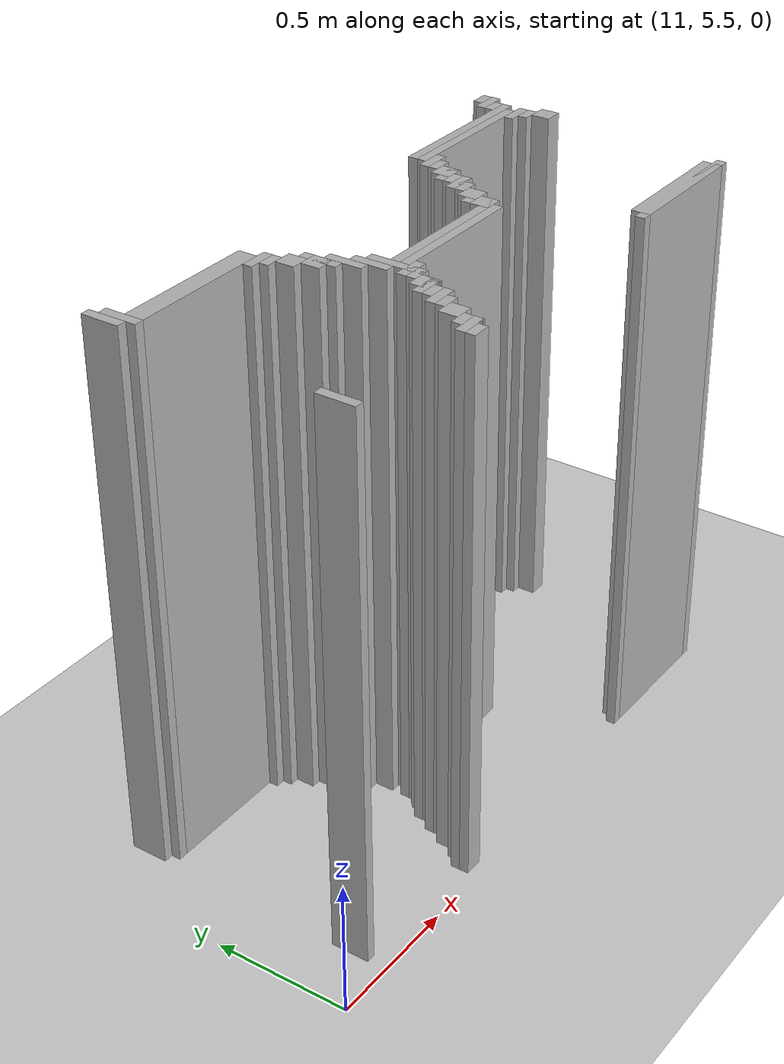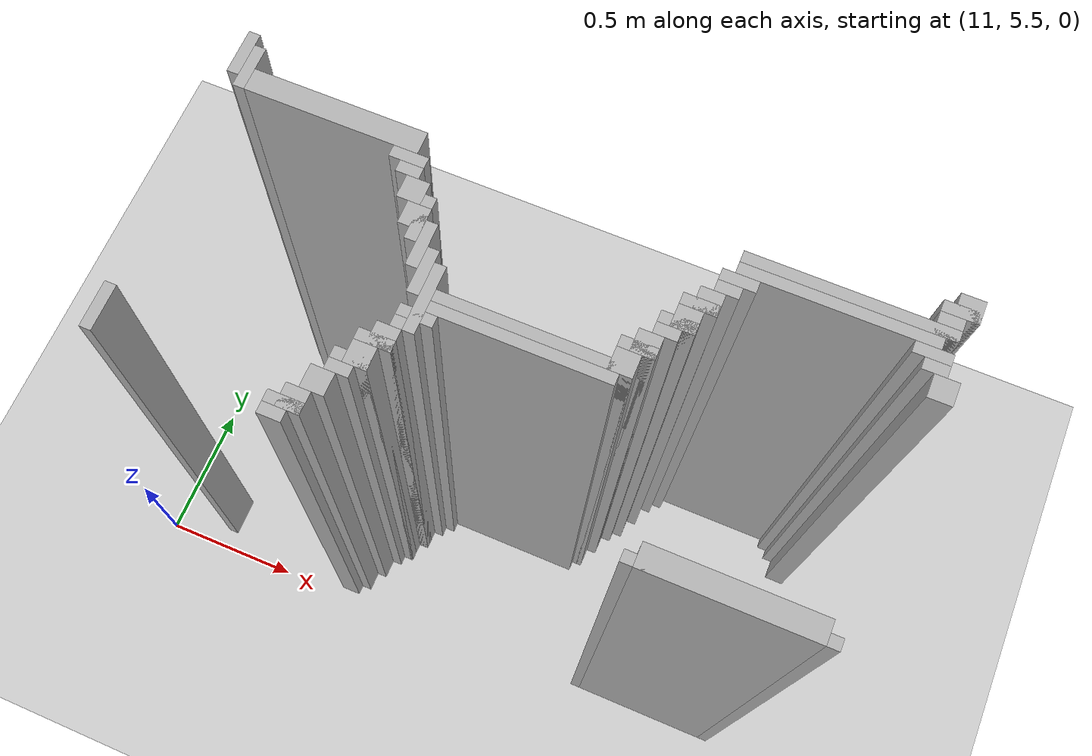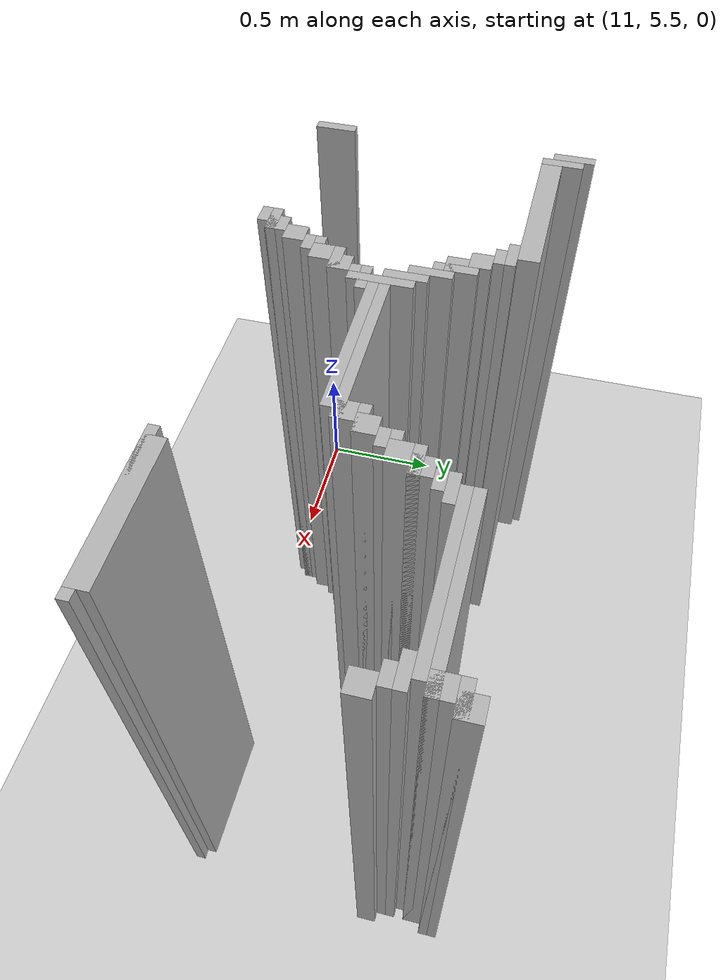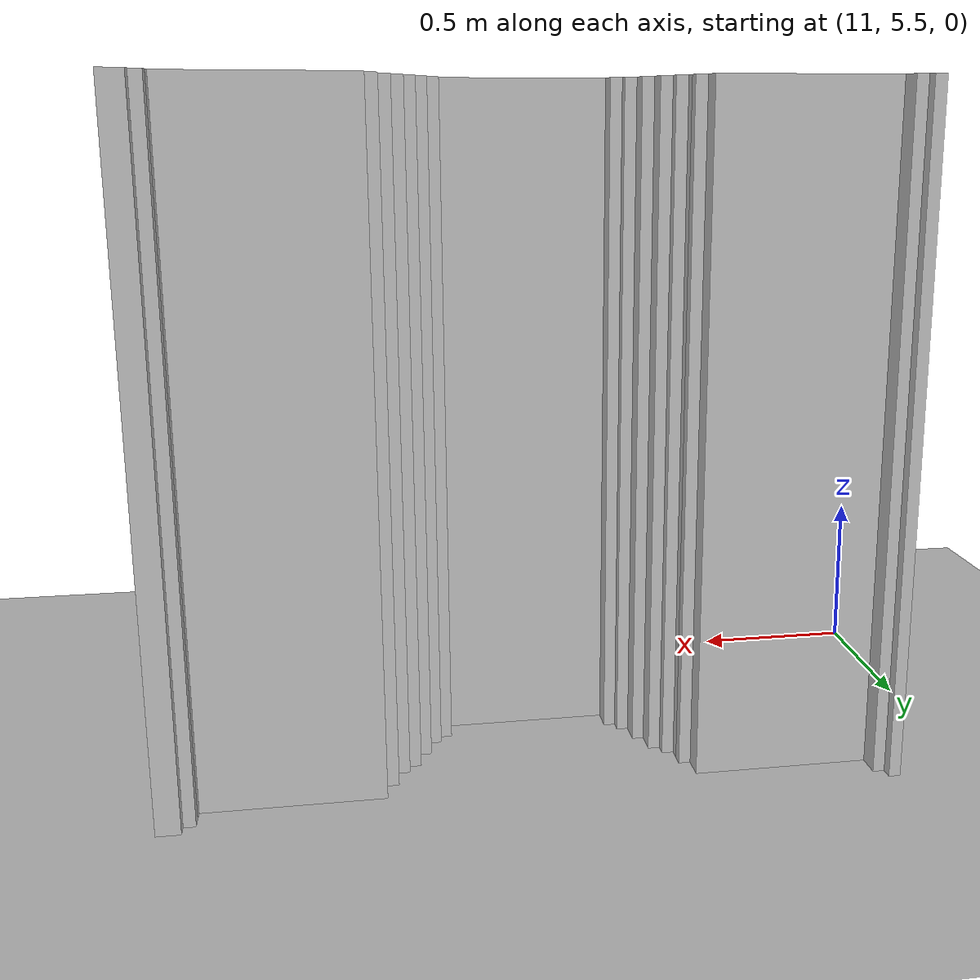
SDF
<sdf version="1.6">
 <world name="slam_world">
  <model name="ground_plane">
   <static>true</static>
   <link name="link">
    <collision name="collision">
     <geometry><plane><normal>0 0 1</normal><size>100 100</size></plane></geometry>
    </collision>
    <visual name="visual">
     <geometry><plane><normal>0 0 1</normal><size>100 100</size></plane></geometry>
     <material>
      <ambient>0.8 0.8 0.8 1</ambient>
      <diffuse>0.8 0.8 0.8 1</diffuse>
      <specular>0.8 0.8 0.8 1</specular>
     </material>
    </visual>
   </link>
  </model>
  <model name="wall_3635">
   <static>true</static>
   <pose>11.223897911832946 6.473317865429234 1.0 0 0 0</pose>
   <link name="link">
    <collision name="collision">
     <geometry><box><size>0.03480278422273782 0.13921113689095127 2.0</size></box></geometry>
    </collision>
    <visual name="visual">
     <geometry><box><size>0.03480278422273782 0.13921113689095127 2.0</size></box></geometry>
     <material><ambient>0.5 0.5 0.5 1</ambient><diffuse>0.7 0.7 0.7 1</diffuse></material>
    </visual>
   </link>
  </model>
  <model name="wall_3636">
   <static>true</static>
   <pose>13.294663573085847 6.508120649651972 1.0 0 0 0</pose>
   <link name="link">
    <collision name="collision">
     <geometry><box><size>0.06960556844547564 0.06960556844547564 2.0</size></box></geometry>
    </collision>
    <visual name="visual">
     <geometry><box><size>0.06960556844547564 0.06960556844547564 2.0</size></box></geometry>
     <material><ambient>0.5 0.5 0.5 1</ambient><diffuse>0.7 0.7 0.7 1</diffuse></material>
    </visual>
   </link>
  </model>
  <model name="wall_3648">
   <static>true</static>
   <pose>11.258700696055683 6.438515081206496 1.0 0 0 0</pose>
   <link name="link">
    <collision name="collision">
     <geometry><box><size>0.03480278422273782 0.13921113689095127 2.0</size></box></geometry>
    </collision>
    <visual name="visual">
     <geometry><box><size>0.03480278422273782 0.13921113689095127 2.0</size></box></geometry>
     <material><ambient>0.5 0.5 0.5 1</ambient><diffuse>0.7 0.7 0.7 1</diffuse></material>
    </visual>
   </link>
  </model>
  <model name="wall_3649">
   <static>true</static>
   <pose>13.277262180974477 6.490719257540603 1.0 0 0 0</pose>
   <link name="link">
    <collision name="collision">
     <geometry><box><size>0.10440835266821345 0.03480278422273782 2.0</size></box></geometry>
    </collision>
    <visual name="visual">
     <geometry><box><size>0.10440835266821345 0.03480278422273782 2.0</size></box></geometry>
     <material><ambient>0.5 0.5 0.5 1</ambient><diffuse>0.7 0.7 0.7 1</diffuse></material>
    </visual>
   </link>
  </model>
  <model name="wall_3656">
   <static>true</static>
   <pose>13.259860788863108 6.438515081206496 1.0 0 0 0</pose>
   <link name="link">
    <collision name="collision">
     <geometry><box><size>0.06960556844547564 0.06960556844547564 2.0</size></box></geometry>
    </collision>
    <visual name="visual">
     <geometry><box><size>0.06960556844547564 0.06960556844547564 2.0</size></box></geometry>
     <material><ambient>0.5 0.5 0.5 1</ambient><diffuse>0.7 0.7 0.7 1</diffuse></material>
    </visual>
   </link>
  </model>
  <model name="wall_3668">
   <static>true</static>
   <pose>11.537122969837586 6.403712296983758 1.0 0 0 0</pose>
   <link name="link">
    <collision name="collision">
     <geometry><box><size>0.5220417633410672 0.06960556844547564 2.0</size></box></geometry>
    </collision>
    <visual name="visual">
     <geometry><box><size>0.5220417633410672 0.06960556844547564 2.0</size></box></geometry>
     <material><ambient>0.5 0.5 0.5 1</ambient><diffuse>0.7 0.7 0.7 1</diffuse></material>
    </visual>
   </link>
  </model>
  <model name="wall_3669">
   <static>true</static>
   <pose>12.998839907192576 6.421113689095128 1.0 0 0 0</pose>
   <link name="link">
    <collision name="collision">
     <geometry><box><size>0.5916473317865429 0.03480278422273782 2.0</size></box></geometry>
    </collision>
    <visual name="visual">
     <geometry><box><size>0.5916473317865429 0.03480278422273782 2.0</size></box></geometry>
     <material><ambient>0.5 0.5 0.5 1</ambient><diffuse>0.7 0.7 0.7 1</diffuse></material>
    </visual>
   </link>
  </model>
  <model name="wall_3676">
   <static>true</static>
   <pose>12.981438515081207 6.386310904872389 1.0 0 0 0</pose>
   <link name="link">
    <collision name="collision">
     <geometry><box><size>0.5568445475638051 0.03480278422273782 2.0</size></box></geometry>
    </collision>
    <visual name="visual">
     <geometry><box><size>0.5568445475638051 0.03480278422273782 2.0</size></box></geometry>
     <material><ambient>0.5 0.5 0.5 1</ambient><diffuse>0.7 0.7 0.7 1</diffuse></material>
    </visual>
   </link>
  </model>
  <model name="wall_3687">
   <static>true</static>
   <pose>11.780742459396752 6.351508120649652 1.0 0 0 0</pose>
   <link name="link">
    <collision name="collision">
     <geometry><box><size>0.10440835266821345 0.03480278422273782 2.0</size></box></geometry>
    </collision>
    <visual name="visual">
     <geometry><box><size>0.10440835266821345 0.03480278422273782 2.0</size></box></geometry>
     <material><ambient>0.5 0.5 0.5 1</ambient><diffuse>0.7 0.7 0.7 1</diffuse></material>
    </visual>
   </link>
  </model>
  <model name="wall_3688">
   <static>true</static>
   <pose>12.720417633410673 6.351508120649652 1.0 0 0 0</pose>
   <link name="link">
    <collision name="collision">
     <geometry><box><size>0.10440835266821345 0.03480278422273782 2.0</size></box></geometry>
    </collision>
    <visual name="visual">
     <geometry><box><size>0.10440835266821345 0.03480278422273782 2.0</size></box></geometry>
     <material><ambient>0.5 0.5 0.5 1</ambient><diffuse>0.7 0.7 0.7 1</diffuse></material>
    </visual>
   </link>
  </model>
  <model name="wall_3689">
   <static>true</static>
   <pose>13.24245939675174 6.351508120649652 1.0 0 0 0</pose>
   <link name="link">
    <collision name="collision">
     <geometry><box><size>0.10440835266821345 0.03480278422273782 2.0</size></box></geometry>
    </collision>
    <visual name="visual">
     <geometry><box><size>0.10440835266821345 0.03480278422273782 2.0</size></box></geometry>
     <material><ambient>0.5 0.5 0.5 1</ambient><diffuse>0.7 0.7 0.7 1</diffuse></material>
    </visual>
   </link>
  </model>
  <model name="wall_3697">
   <static>true</static>
   <pose>11.79814385150812 6.316705336426914 1.0 0 0 0</pose>
   <link name="link">
    <collision name="collision">
     <geometry><box><size>0.06960556844547564 0.03480278422273782 2.0</size></box></geometry>
    </collision>
    <visual name="visual">
     <geometry><box><size>0.06960556844547564 0.03480278422273782 2.0</size></box></geometry>
     <material><ambient>0.5 0.5 0.5 1</ambient><diffuse>0.7 0.7 0.7 1</diffuse></material>
    </visual>
   </link>
  </model>
  <model name="wall_3698">
   <static>true</static>
   <pose>12.703016241299304 6.316705336426914 1.0 0 0 0</pose>
   <link name="link">
    <collision name="collision">
     <geometry><box><size>0.06960556844547564 0.03480278422273782 2.0</size></box></geometry>
    </collision>
    <visual name="visual">
     <geometry><box><size>0.06960556844547564 0.03480278422273782 2.0</size></box></geometry>
     <material><ambient>0.5 0.5 0.5 1</ambient><diffuse>0.7 0.7 0.7 1</diffuse></material>
    </visual>
   </link>
  </model>
  <model name="wall_3699">
   <static>true</static>
   <pose>13.259860788863108 6.316705336426914 1.0 0 0 0</pose>
   <link name="link">
    <collision name="collision">
     <geometry><box><size>0.06960556844547564 0.03480278422273782 2.0</size></box></geometry>
    </collision>
    <visual name="visual">
     <geometry><box><size>0.06960556844547564 0.03480278422273782 2.0</size></box></geometry>
     <material><ambient>0.5 0.5 0.5 1</ambient><diffuse>0.7 0.7 0.7 1</diffuse></material>
    </visual>
   </link>
  </model>
  <model name="wall_3710">
   <static>true</static>
   <pose>11.832946635730858 6.2645011600928076 1.0 0 0 0</pose>
   <link name="link">
    <collision name="collision">
     <geometry><box><size>0.06960556844547564 0.06960556844547564 2.0</size></box></geometry>
    </collision>
    <visual name="visual">
     <geometry><box><size>0.06960556844547564 0.06960556844547564 2.0</size></box></geometry>
     <material><ambient>0.5 0.5 0.5 1</ambient><diffuse>0.7 0.7 0.7 1</diffuse></material>
    </visual>
   </link>
  </model>
  <model name="wall_3711">
   <static>true</static>
   <pose>12.668213457076565 6.2645011600928076 1.0 0 0 0</pose>
   <link name="link">
    <collision name="collision">
     <geometry><box><size>0.06960556844547564 0.06960556844547564 2.0</size></box></geometry>
    </collision>
    <visual name="visual">
     <geometry><box><size>0.06960556844547564 0.06960556844547564 2.0</size></box></geometry>
     <material><ambient>0.5 0.5 0.5 1</ambient><diffuse>0.7 0.7 0.7 1</diffuse></material>
    </visual>
   </link>
  </model>
  <model name="wall_3712">
   <static>true</static>
   <pose>13.294663573085847 6.2645011600928076 1.0 0 0 0</pose>
   <link name="link">
    <collision name="collision">
     <geometry><box><size>0.06960556844547564 0.06960556844547564 2.0</size></box></geometry>
    </collision>
    <visual name="visual">
     <geometry><box><size>0.06960556844547564 0.06960556844547564 2.0</size></box></geometry>
     <material><ambient>0.5 0.5 0.5 1</ambient><diffuse>0.7 0.7 0.7 1</diffuse></material>
    </visual>
   </link>
  </model>
  <model name="wall_3723">
   <static>true</static>
   <pose>11.885150812064964 6.194895591647332 1.0 0 0 0</pose>
   <link name="link">
    <collision name="collision">
     <geometry><box><size>0.03480278422273782 0.13921113689095127 2.0</size></box></geometry>
    </collision>
    <visual name="visual">
     <geometry><box><size>0.03480278422273782 0.13921113689095127 2.0</size></box></geometry>
     <material><ambient>0.5 0.5 0.5 1</ambient><diffuse>0.7 0.7 0.7 1</diffuse></material>
    </visual>
   </link>
  </model>
  <model name="wall_3724">
   <static>true</static>
   <pose>12.650812064965196 6.247099767981438 1.0 0 0 0</pose>
   <link name="link">
    <collision name="collision">
     <geometry><box><size>0.10440835266821345 0.03480278422273782 2.0</size></box></geometry>
    </collision>
    <visual name="visual">
     <geometry><box><size>0.10440835266821345 0.03480278422273782 2.0</size></box></geometry>
     <material><ambient>0.5 0.5 0.5 1</ambient><diffuse>0.7 0.7 0.7 1</diffuse></material>
    </visual>
   </link>
  </model>
  <model name="wall_3736">
   <static>true</static>
   <pose>11.867749419953595 6.194895591647332 1.0 0 0 0</pose>
   <link name="link">
    <collision name="collision">
     <geometry><box><size>0.06960556844547564 0.06960556844547564 2.0</size></box></geometry>
    </collision>
    <visual name="visual">
     <geometry><box><size>0.06960556844547564 0.06960556844547564 2.0</size></box></geometry>
     <material><ambient>0.5 0.5 0.5 1</ambient><diffuse>0.7 0.7 0.7 1</diffuse></material>
    </visual>
   </link>
  </model>
  <model name="wall_3737">
   <static>true</static>
   <pose>12.633410672853827 6.194895591647332 1.0 0 0 0</pose>
   <link name="link">
    <collision name="collision">
     <geometry><box><size>0.06960556844547564 0.06960556844547564 2.0</size></box></geometry>
    </collision>
    <visual name="visual">
     <geometry><box><size>0.06960556844547564 0.06960556844547564 2.0</size></box></geometry>
     <material><ambient>0.5 0.5 0.5 1</ambient><diffuse>0.7 0.7 0.7 1</diffuse></material>
    </visual>
   </link>
  </model>
  <model name="wall_3749">
   <static>true</static>
   <pose>11.919953596287703 6.125290023201856 1.0 0 0 0</pose>
   <link name="link">
    <collision name="collision">
     <geometry><box><size>0.03480278422273782 0.13921113689095127 2.0</size></box></geometry>
    </collision>
    <visual name="visual">
     <geometry><box><size>0.03480278422273782 0.13921113689095127 2.0</size></box></geometry>
     <material><ambient>0.5 0.5 0.5 1</ambient><diffuse>0.7 0.7 0.7 1</diffuse></material>
    </visual>
   </link>
  </model>
  <model name="wall_3750">
   <static>true</static>
   <pose>12.616009280742459 6.177494199535962 1.0 0 0 0</pose>
   <link name="link">
    <collision name="collision">
     <geometry><box><size>0.10440835266821345 0.03480278422273782 2.0</size></box></geometry>
    </collision>
    <visual name="visual">
     <geometry><box><size>0.10440835266821345 0.03480278422273782 2.0</size></box></geometry>
     <material><ambient>0.5 0.5 0.5 1</ambient><diffuse>0.7 0.7 0.7 1</diffuse></material>
    </visual>
   </link>
  </model>
  <model name="wall_3756">
   <static>true</static>
   <pose>12.59860788863109 6.142691415313225 1.0 0 0 0</pose>
   <link name="link">
    <collision name="collision">
     <geometry><box><size>0.06960556844547564 0.03480278422273782 2.0</size></box></geometry>
    </collision>
    <visual name="visual">
     <geometry><box><size>0.06960556844547564 0.03480278422273782 2.0</size></box></geometry>
     <material><ambient>0.5 0.5 0.5 1</ambient><diffuse>0.7 0.7 0.7 1</diffuse></material>
    </visual>
   </link>
  </model>
  <model name="wall_3766">
   <static>true</static>
   <pose>11.95475638051044 6.05568445475638 1.0 0 0 0</pose>
   <link name="link">
    <collision name="collision">
     <geometry><box><size>0.03480278422273782 0.13921113689095127 2.0</size></box></geometry>
    </collision>
    <visual name="visual">
     <geometry><box><size>0.03480278422273782 0.13921113689095127 2.0</size></box></geometry>
     <material><ambient>0.5 0.5 0.5 1</ambient><diffuse>0.7 0.7 0.7 1</diffuse></material>
    </visual>
   </link>
  </model>
  <model name="wall_3767">
   <static>true</static>
   <pose>12.563805104408353 6.090487238979118 1.0 0 0 0</pose>
   <link name="link">
    <collision name="collision">
     <geometry><box><size>0.06960556844547564 0.06960556844547564 2.0</size></box></geometry>
    </collision>
    <visual name="visual">
     <geometry><box><size>0.06960556844547564 0.06960556844547564 2.0</size></box></geometry>
     <material><ambient>0.5 0.5 0.5 1</ambient><diffuse>0.7 0.7 0.7 1</diffuse></material>
    </visual>
   </link>
  </model>
  <model name="wall_3779">
   <static>true</static>
   <pose>11.989559164733178 5.986078886310905 1.0 0 0 0</pose>
   <link name="link">
    <collision name="collision">
     <geometry><box><size>0.03480278422273782 0.2088167053364269 2.0</size></box></geometry>
    </collision>
    <visual name="visual">
     <geometry><box><size>0.03480278422273782 0.2088167053364269 2.0</size></box></geometry>
     <material><ambient>0.5 0.5 0.5 1</ambient><diffuse>0.7 0.7 0.7 1</diffuse></material>
    </visual>
   </link>
  </model>
  <model name="wall_3780">
   <static>true</static>
   <pose>12.546403712296984 6.073085846867749 1.0 0 0 0</pose>
   <link name="link">
    <collision name="collision">
     <geometry><box><size>0.10440835266821345 0.03480278422273782 2.0</size></box></geometry>
    </collision>
    <visual name="visual">
     <geometry><box><size>0.10440835266821345 0.03480278422273782 2.0</size></box></geometry>
     <material><ambient>0.5 0.5 0.5 1</ambient><diffuse>0.7 0.7 0.7 1</diffuse></material>
    </visual>
   </link>
  </model>
  <model name="wall_3786">
   <static>true</static>
   <pose>12.529002320185615 6.020881670533642 1.0 0 0 0</pose>
   <link name="link">
    <collision name="collision">
     <geometry><box><size>0.06960556844547564 0.06960556844547564 2.0</size></box></geometry>
    </collision>
    <visual name="visual">
     <geometry><box><size>0.06960556844547564 0.06960556844547564 2.0</size></box></geometry>
     <material><ambient>0.5 0.5 0.5 1</ambient><diffuse>0.7 0.7 0.7 1</diffuse></material>
    </visual>
   </link>
  </model>
  <model name="wall_3796">
   <static>true</static>
   <pose>12.28538283062645 6.003480278422273 1.0 0 0 0</pose>
   <link name="link">
    <collision name="collision">
     <geometry><box><size>0.5568445475638051 0.03480278422273782 2.0</size></box></geometry>
    </collision>
    <visual name="visual">
     <geometry><box><size>0.5568445475638051 0.03480278422273782 2.0</size></box></geometry>
     <material><ambient>0.5 0.5 0.5 1</ambient><diffuse>0.7 0.7 0.7 1</diffuse></material>
    </visual>
   </link>
  </model>
  <model name="wall_3807">
   <static>true</static>
   <pose>12.267981438515081 5.968677494199536 1.0 0 0 0</pose>
   <link name="link">
    <collision name="collision">
     <geometry><box><size>0.5220417633410672 0.03480278422273782 2.0</size></box></geometry>
    </collision>
    <visual name="visual">
     <geometry><box><size>0.5220417633410672 0.03480278422273782 2.0</size></box></geometry>
     <material><ambient>0.5 0.5 0.5 1</ambient><diffuse>0.7 0.7 0.7 1</diffuse></material>
    </visual>
   </link>
  </model>
  <model name="wall_3822">
   <static>true</static>
   <pose>11.989559164733178 5.933874709976798 1.0 0 0 0</pose>
   <link name="link">
    <collision name="collision">
     <geometry><box><size>0.10440835266821345 0.03480278422273782 2.0</size></box></geometry>
    </collision>
    <visual name="visual">
     <geometry><box><size>0.10440835266821345 0.03480278422273782 2.0</size></box></geometry>
     <material><ambient>0.5 0.5 0.5 1</ambient><diffuse>0.7 0.7 0.7 1</diffuse></material>
    </visual>
   </link>
  </model>
  <model name="wall_3836">
   <static>true</static>
   <pose>11.97215777262181 5.89907192575406 1.0 0 0 0</pose>
   <link name="link">
    <collision name="collision">
     <geometry><box><size>0.06960556844547564 0.03480278422273782 2.0</size></box></geometry>
    </collision>
    <visual name="visual">
     <geometry><box><size>0.06960556844547564 0.03480278422273782 2.0</size></box></geometry>
     <material><ambient>0.5 0.5 0.5 1</ambient><diffuse>0.7 0.7 0.7 1</diffuse></material>
    </visual>
   </link>
  </model>
  <model name="wall_3851">
   <static>true</static>
   <pose>11.937354988399072 5.846867749419953 1.0 0 0 0</pose>
   <link name="link">
    <collision name="collision">
     <geometry><box><size>0.06960556844547564 0.06960556844547564 2.0</size></box></geometry>
    </collision>
    <visual name="visual">
     <geometry><box><size>0.06960556844547564 0.06960556844547564 2.0</size></box></geometry>
     <material><ambient>0.5 0.5 0.5 1</ambient><diffuse>0.7 0.7 0.7 1</diffuse></material>
    </visual>
   </link>
  </model>
  <model name="wall_3867">
   <static>true</static>
   <pose>11.919953596287703 5.8294663573085845 1.0 0 0 0</pose>
   <link name="link">
    <collision name="collision">
     <geometry><box><size>0.10440835266821345 0.03480278422273782 2.0</size></box></geometry>
    </collision>
    <visual name="visual">
     <geometry><box><size>0.10440835266821345 0.03480278422273782 2.0</size></box></geometry>
     <material><ambient>0.5 0.5 0.5 1</ambient><diffuse>0.7 0.7 0.7 1</diffuse></material>
    </visual>
   </link>
  </model>
  <model name="wall_3881">
   <static>true</static>
   <pose>11.902552204176333 5.7772621809744775 1.0 0 0 0</pose>
   <link name="link">
    <collision name="collision">
     <geometry><box><size>0.06960556844547564 0.06960556844547564 2.0</size></box></geometry>
    </collision>
    <visual name="visual">
     <geometry><box><size>0.06960556844547564 0.06960556844547564 2.0</size></box></geometry>
     <material><ambient>0.5 0.5 0.5 1</ambient><diffuse>0.7 0.7 0.7 1</diffuse></material>
    </visual>
   </link>
  </model>
  <model name="wall_3896">
   <static>true</static>
   <pose>11.885150812064964 5.759860788863109 1.0 0 0 0</pose>
   <link name="link">
    <collision name="collision">
     <geometry><box><size>0.10440835266821345 0.03480278422273782 2.0</size></box></geometry>
    </collision>
    <visual name="visual">
     <geometry><box><size>0.10440835266821345 0.03480278422273782 2.0</size></box></geometry>
     <material><ambient>0.5 0.5 0.5 1</ambient><diffuse>0.7 0.7 0.7 1</diffuse></material>
    </visual>
   </link>
  </model>
  <model name="wall_3905">
   <static>true</static>
   <pose>11.867749419953595 5.725058004640371 1.0 0 0 0</pose>
   <link name="link">
    <collision name="collision">
     <geometry><box><size>0.06960556844547564 0.03480278422273782 2.0</size></box></geometry>
    </collision>
    <visual name="visual">
     <geometry><box><size>0.06960556844547564 0.03480278422273782 2.0</size></box></geometry>
     <material><ambient>0.5 0.5 0.5 1</ambient><diffuse>0.7 0.7 0.7 1</diffuse></material>
    </visual>
   </link>
  </model>
  <model name="wall_3919">
   <static>true</static>
   <pose>11.223897911832946 5.638051044083526 1.0 0 0 0</pose>
   <link name="link">
    <collision name="collision">
     <geometry><box><size>0.03480278422273782 0.13921113689095127 2.0</size></box></geometry>
    </collision>
    <visual name="visual">
     <geometry><box><size>0.03480278422273782 0.13921113689095127 2.0</size></box></geometry>
     <material><ambient>0.5 0.5 0.5 1</ambient><diffuse>0.7 0.7 0.7 1</diffuse></material>
    </visual>
   </link>
  </model>
  <model name="wall_3920">
   <static>true</static>
   <pose>11.832946635730858 5.672853828306264 1.0 0 0 0</pose>
   <link name="link">
    <collision name="collision">
     <geometry><box><size>0.06960556844547564 0.06960556844547564 2.0</size></box></geometry>
    </collision>
    <visual name="visual">
     <geometry><box><size>0.06960556844547564 0.06960556844547564 2.0</size></box></geometry>
     <material><ambient>0.5 0.5 0.5 1</ambient><diffuse>0.7 0.7 0.7 1</diffuse></material>
    </visual>
   </link>
  </model>
  <model name="wall_3936">
   <static>true</static>
   <pose>11.79814385150812 5.603248259860789 1.0 0 0 0</pose>
   <link name="link">
    <collision name="collision">
     <geometry><box><size>0.06960556844547564 0.06960556844547564 2.0</size></box></geometry>
    </collision>
    <visual name="visual">
     <geometry><box><size>0.06960556844547564 0.06960556844547564 2.0</size></box></geometry>
     <material><ambient>0.5 0.5 0.5 1</ambient><diffuse>0.7 0.7 0.7 1</diffuse></material>
    </visual>
   </link>
  </model>
  <model name="wall_3951">
   <static>true</static>
   <pose>11.780742459396752 5.58584686774942 1.0 0 0 0</pose>
   <link name="link">
    <collision name="collision">
     <geometry><box><size>0.10440835266821345 0.03480278422273782 2.0</size></box></geometry>
    </collision>
    <visual name="visual">
     <geometry><box><size>0.10440835266821345 0.03480278422273782 2.0</size></box></geometry>
     <material><ambient>0.5 0.5 0.5 1</ambient><diffuse>0.7 0.7 0.7 1</diffuse></material>
    </visual>
   </link>
  </model>
  <model name="wall_3952">
   <static>true</static>
   <pose>12.981438515081207 5.56844547563805 1.0 0 0 0</pose>
   <link name="link">
    <collision name="collision">
     <geometry><box><size>0.4872389791183295 0.06960556844547564 2.0</size></box></geometry>
    </collision>
    <visual name="visual">
     <geometry><box><size>0.4872389791183295 0.06960556844547564 2.0</size></box></geometry>
     <material><ambient>0.5 0.5 0.5 1</ambient><diffuse>0.7 0.7 0.7 1</diffuse></material>
    </visual>
   </link>
  </model>
  <model name="wall_3964">
   <static>true</static>
   <pose>11.763341067285383 5.551044083526682 1.0 0 0 0</pose>
   <link name="link">
    <collision name="collision">
     <geometry><box><size>0.06960556844547564 0.03480278422273782 2.0</size></box></geometry>
    </collision>
    <visual name="visual">
     <geometry><box><size>0.06960556844547564 0.03480278422273782 2.0</size></box></geometry>
     <material><ambient>0.5 0.5 0.5 1</ambient><diffuse>0.7 0.7 0.7 1</diffuse></material>
    </visual>
   </link>
  </model>
  <model name="wall_3965">
   <static>true</static>
   <pose>12.981438515081207 5.551044083526682 1.0 0 0 0</pose>
   <link name="link">
    <collision name="collision">
     <geometry><box><size>0.5568445475638051 0.03480278422273782 2.0</size></box></geometry>
    </collision>
    <visual name="visual">
     <geometry><box><size>0.5568445475638051 0.03480278422273782 2.0</size></box></geometry>
     <material><ambient>0.5 0.5 0.5 1</ambient><diffuse>0.7 0.7 0.7 1</diffuse></material>
    </visual>
   </link>
  </model>
 </world>
</sdf>
